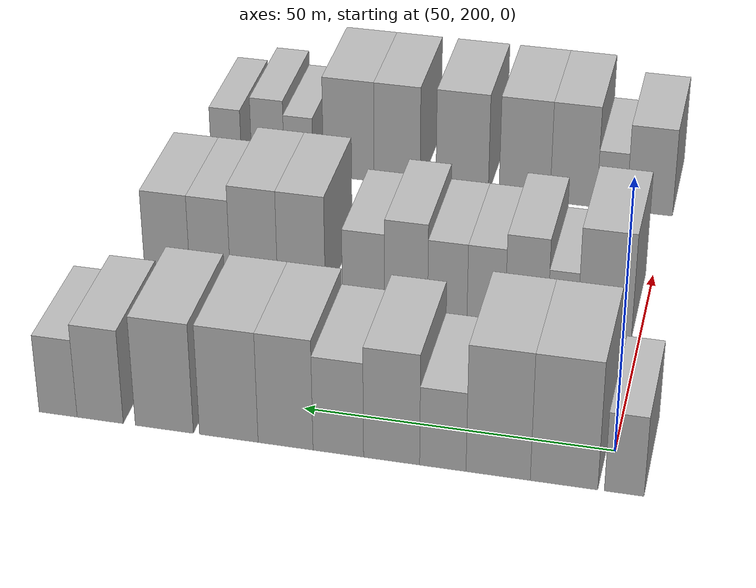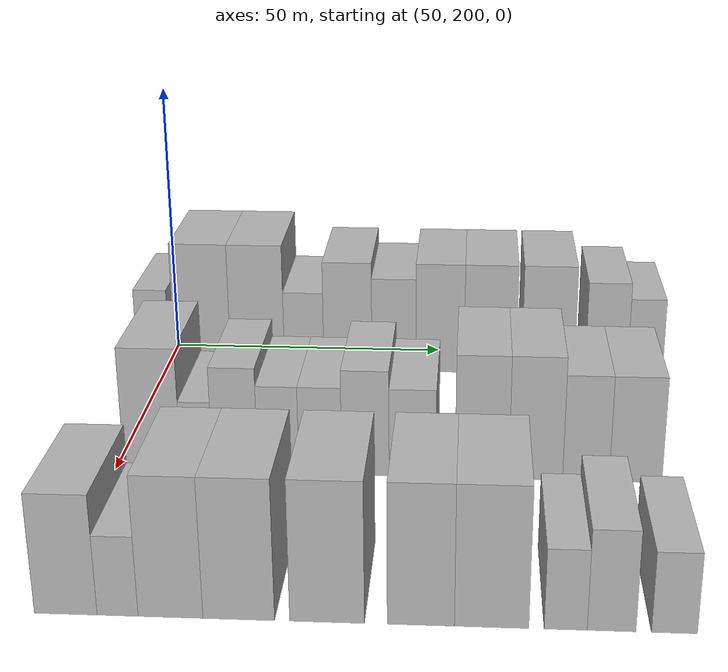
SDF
<sdf version="1.6">
 <world name="default">
  <model name="building_63">
   <static>1</static>
   <pose>50.0000 197.3361 0 0.000000 0.000000 0.000000</pose>
   <link name="link">
    <pose>0 0 7.50 0 0 0</pose>
    <collision name="collision"><geometry><box><size>20.0000 6.0712 15.0000</size></box></geometry></collision>
    <visual name="visual">
     <cast_shadows>0</cast_shadows>
     <geometry><box><size>20.0000 6.0712 15.0000</size></box></geometry>
     <material>
      <script>
       <uri>model://HANNAS_wall/materials/scripts</uri>
       <uri>model://HANNAS_wall/materials/textures</uri>
       <name>vrc/HANNAS_wall</name>
      </script>
     </material>
    </visual>
   </link>
  </model>
  <model name="building_64">
   <static>1</static>
   <pose>50.0000 206.5770 0 0.000000 0.000000 0.000000</pose>
   <link name="link">
    <pose>0 0 12.00 0 0 0</pose>
    <collision name="collision"><geometry><box><size>20.0000 10.4105 24.0000</size></box></geometry></collision>
    <visual name="visual">
     <cast_shadows>0</cast_shadows>
     <geometry><box><size>20.0000 10.4105 24.0000</size></box></geometry>
     <material>
      <script>
       <uri>model://HANNAS_wall/materials/scripts</uri>
       <uri>model://HANNAS_wall/materials/textures</uri>
       <name>vrc/HANNAS_wall</name>
      </script>
     </material>
    </visual>
   </link>
  </model>
  <model name="building_65">
   <static>1</static>
   <pose>50.0000 216.7912 0 0.000000 0.000000 0.000000</pose>
   <link name="link">
    <pose>0 0 12.00 0 0 0</pose>
    <collision name="collision"><geometry><box><size>20.0000 10.0179 24.0000</size></box></geometry></collision>
    <visual name="visual">
     <cast_shadows>0</cast_shadows>
     <geometry><box><size>20.0000 10.0179 24.0000</size></box></geometry>
     <material>
      <script>
       <uri>model://HANNAS_wall/materials/scripts</uri>
       <uri>model://HANNAS_wall/materials/textures</uri>
       <name>vrc/HANNAS_wall</name>
      </script>
     </material>
    </visual>
   </link>
  </model>
  <model name="building_66">
   <static>1</static>
   <pose>50.0000 225.4448 0 0.000000 0.000000 0.000000</pose>
   <link name="link">
    <pose>0 0 7.50 0 0 0</pose>
    <collision name="collision"><geometry><box><size>20.0000 7.2893 15.0000</size></box></geometry></collision>
    <visual name="visual">
     <cast_shadows>0</cast_shadows>
     <geometry><box><size>20.0000 7.2893 15.0000</size></box></geometry>
     <material>
      <script>
       <uri>model://HANNAS_wall/materials/scripts</uri>
       <uri>model://HANNAS_wall/materials/textures</uri>
       <name>vrc/HANNAS_wall</name>
      </script>
     </material>
    </visual>
   </link>
  </model>
  <model name="building_67">
   <static>1</static>
   <pose>50.0000 233.5340 0 0.000000 0.000000 0.000000</pose>
   <link name="link">
    <pose>0 0 10.50 0 0 0</pose>
    <collision name="collision"><geometry><box><size>20.0000 8.8891 21.0000</size></box></geometry></collision>
    <visual name="visual">
     <cast_shadows>0</cast_shadows>
     <geometry><box><size>20.0000 8.8891 21.0000</size></box></geometry>
     <material>
      <script>
       <uri>model://HANNAS_wall/materials/scripts</uri>
       <uri>model://HANNAS_wall/materials/textures</uri>
       <name>vrc/HANNAS_wall</name>
      </script>
     </material>
    </visual>
   </link>
  </model>
  <model name="building_68">
   <static>1</static>
   <pose>50.0000 242.0202 0 0.000000 0.000000 0.000000</pose>
   <link name="link">
    <pose>0 0 9.00 0 0 0</pose>
    <collision name="collision"><geometry><box><size>20.0000 8.0832 18.0000</size></box></geometry></collision>
    <visual name="visual">
     <cast_shadows>0</cast_shadows>
     <geometry><box><size>20.0000 8.0832 18.0000</size></box></geometry>
     <material>
      <script>
       <uri>model://HANNAS_wall/materials/scripts</uri>
       <uri>model://HANNAS_wall/materials/textures</uri>
       <name>vrc/HANNAS_wall</name>
      </script>
     </material>
    </visual>
   </link>
  </model>
  <model name="building_69">
   <static>1</static>
   <pose>50.0000 250.4958 0 0.000000 0.000000 0.000000</pose>
   <link name="link">
    <pose>0 0 10.50 0 0 0</pose>
    <collision name="collision"><geometry><box><size>20.0000 8.8679 21.0000</size></box></geometry></collision>
    <visual name="visual">
     <cast_shadows>0</cast_shadows>
     <geometry><box><size>20.0000 8.8679 21.0000</size></box></geometry>
     <material>
      <script>
       <uri>model://HANNAS_wall/materials/scripts</uri>
       <uri>model://HANNAS_wall/materials/textures</uri>
       <name>vrc/HANNAS_wall</name>
      </script>
     </material>
    </visual>
   </link>
  </model>
  <model name="building_70">
   <static>1</static>
   <pose>50.0000 259.7075 0 0.000000 0.000000 0.000000</pose>
   <link name="link">
    <pose>0 0 10.50 0 0 0</pose>
    <collision name="collision"><geometry><box><size>20.0000 9.5554 21.0000</size></box></geometry></collision>
    <visual name="visual">
     <cast_shadows>0</cast_shadows>
     <geometry><box><size>20.0000 9.5554 21.0000</size></box></geometry>
     <material>
      <script>
       <uri>model://HANNAS_wall/materials/scripts</uri>
       <uri>model://HANNAS_wall/materials/textures</uri>
       <name>vrc/HANNAS_wall</name>
      </script>
     </material>
    </visual>
   </link>
  </model>
  <model name="building_71">
   <static>1</static>
   <pose>50.0000 270.2743 0 0.000000 0.000000 0.000000</pose>
   <link name="link">
    <pose>0 0 10.50 0 0 0</pose>
    <collision name="collision"><geometry><box><size>20.0000 9.5782 21.0000</size></box></geometry></collision>
    <visual name="visual">
     <cast_shadows>0</cast_shadows>
     <geometry><box><size>20.0000 9.5782 21.0000</size></box></geometry>
     <material>
      <script>
       <uri>model://HANNAS_wall/materials/scripts</uri>
       <uri>model://HANNAS_wall/materials/textures</uri>
       <name>vrc/HANNAS_wall</name>
      </script>
     </material>
    </visual>
   </link>
  </model>
  <model name="building_72">
   <static>1</static>
   <pose>50.0000 280.9077 0 0.000000 0.000000 0.000000</pose>
   <link name="link">
    <pose>0 0 9.00 0 0 0</pose>
    <collision name="collision"><geometry><box><size>20.0000 7.6887 18.0000</size></box></geometry></collision>
    <visual name="visual">
     <cast_shadows>0</cast_shadows>
     <geometry><box><size>20.0000 7.6887 18.0000</size></box></geometry>
     <material>
      <script>
       <uri>model://HANNAS_wall/materials/scripts</uri>
       <uri>model://HANNAS_wall/materials/textures</uri>
       <name>vrc/HANNAS_wall</name>
      </script>
     </material>
    </visual>
   </link>
  </model>
  <model name="building_73">
   <static>1</static>
   <pose>50.0000 287.9304 0 0.000000 0.000000 0.000000</pose>
   <link name="link">
    <pose>0 0 7.50 0 0 0</pose>
    <collision name="collision"><geometry><box><size>20.0000 6.3568 15.0000</size></box></geometry></collision>
    <visual name="visual">
     <cast_shadows>0</cast_shadows>
     <geometry><box><size>20.0000 6.3568 15.0000</size></box></geometry>
     <material>
      <script>
       <uri>model://HANNAS_wall/materials/scripts</uri>
       <uri>model://HANNAS_wall/materials/textures</uri>
       <name>vrc/HANNAS_wall</name>
      </script>
     </material>
    </visual>
   </link>
  </model>
  <model name="building_151">
   <static>1</static>
   <pose>90.0000 205.9098 0 0.000000 0.000000 0.000000</pose>
   <link name="link">
    <pose>0 0 10.50 0 0 0</pose>
    <collision name="collision"><geometry><box><size>20.0000 9.1450 21.0000</size></box></geometry></collision>
    <visual name="visual">
     <cast_shadows>0</cast_shadows>
     <geometry><box><size>20.0000 9.1450 21.0000</size></box></geometry>
     <material>
      <script>
       <uri>model://HANNAS_wall/materials/scripts</uri>
       <uri>model://HANNAS_wall/materials/textures</uri>
       <name>vrc/HANNAS_wall</name>
      </script>
     </material>
    </visual>
   </link>
  </model>
  <model name="building_152">
   <static>1</static>
   <pose>90.0000 213.0103 0 0.000000 0.000000 0.000000</pose>
   <link name="link">
    <pose>0 0 6.00 0 0 0</pose>
    <collision name="collision"><geometry><box><size>20.0000 5.0562 12.0000</size></box></geometry></collision>
    <visual name="visual">
     <cast_shadows>0</cast_shadows>
     <geometry><box><size>20.0000 5.0562 12.0000</size></box></geometry>
     <material>
      <script>
       <uri>model://HANNAS_wall/materials/scripts</uri>
       <uri>model://HANNAS_wall/materials/textures</uri>
       <name>vrc/HANNAS_wall</name>
      </script>
     </material>
    </visual>
   </link>
  </model>
  <model name="building_153">
   <static>1</static>
   <pose>90.0000 219.1524 0 0.000000 0.000000 0.000000</pose>
   <link name="link">
    <pose>0 0 9.00 0 0 0</pose>
    <collision name="collision"><geometry><box><size>20.0000 7.2279 18.0000</size></box></geometry></collision>
    <visual name="visual">
     <cast_shadows>0</cast_shadows>
     <geometry><box><size>20.0000 7.2279 18.0000</size></box></geometry>
     <material>
      <script>
       <uri>model://HANNAS_wall/materials/scripts</uri>
       <uri>model://HANNAS_wall/materials/textures</uri>
       <name>vrc/HANNAS_wall</name>
      </script>
     </material>
    </visual>
   </link>
  </model>
  <model name="building_154">
   <static>1</static>
   <pose>90.0000 226.0284 0 0.000000 0.000000 0.000000</pose>
   <link name="link">
    <pose>0 0 7.50 0 0 0</pose>
    <collision name="collision"><geometry><box><size>20.0000 6.5243 15.0000</size></box></geometry></collision>
    <visual name="visual">
     <cast_shadows>0</cast_shadows>
     <geometry><box><size>20.0000 6.5243 15.0000</size></box></geometry>
     <material>
      <script>
       <uri>model://HANNAS_wall/materials/scripts</uri>
       <uri>model://HANNAS_wall/materials/textures</uri>
       <name>vrc/HANNAS_wall</name>
      </script>
     </material>
    </visual>
   </link>
  </model>
  <model name="building_155">
   <static>1</static>
   <pose>90.0000 232.6891 0 0.000000 0.000000 0.000000</pose>
   <link name="link">
    <pose>0 0 7.50 0 0 0</pose>
    <collision name="collision"><geometry><box><size>20.0000 6.7970 15.0000</size></box></geometry></collision>
    <visual name="visual">
     <cast_shadows>0</cast_shadows>
     <geometry><box><size>20.0000 6.7970 15.0000</size></box></geometry>
     <material>
      <script>
       <uri>model://HANNAS_wall/materials/scripts</uri>
       <uri>model://HANNAS_wall/materials/textures</uri>
       <name>vrc/HANNAS_wall</name>
      </script>
     </material>
    </visual>
   </link>
  </model>
  <model name="building_156">
   <static>1</static>
   <pose>90.0000 239.8294 0 0.000000 0.000000 0.000000</pose>
   <link name="link">
    <pose>0 0 9.00 0 0 0</pose>
    <collision name="collision"><geometry><box><size>20.0000 7.4837 18.0000</size></box></geometry></collision>
    <visual name="visual">
     <cast_shadows>0</cast_shadows>
     <geometry><box><size>20.0000 7.4837 18.0000</size></box></geometry>
     <material>
      <script>
       <uri>model://HANNAS_wall/materials/scripts</uri>
       <uri>model://HANNAS_wall/materials/textures</uri>
       <name>vrc/HANNAS_wall</name>
      </script>
     </material>
    </visual>
   </link>
  </model>
  <model name="building_157">
   <static>1</static>
   <pose>90.0000 247.2647 0 0.000000 0.000000 0.000000</pose>
   <link name="link">
    <pose>0 0 7.50 0 0 0</pose>
    <collision name="collision"><geometry><box><size>20.0000 7.3870 15.0000</size></box></geometry></collision>
    <visual name="visual">
     <cast_shadows>0</cast_shadows>
     <geometry><box><size>20.0000 7.3870 15.0000</size></box></geometry>
     <material>
      <script>
       <uri>model://HANNAS_wall/materials/scripts</uri>
       <uri>model://HANNAS_wall/materials/textures</uri>
       <name>vrc/HANNAS_wall</name>
      </script>
     </material>
    </visual>
   </link>
  </model>
  <model name="building_158">
   <static>1</static>
   <pose>90.0000 258.1683 0 0.000000 0.000000 0.000000</pose>
   <link name="link">
    <pose>0 0 10.50 0 0 0</pose>
    <collision name="collision"><geometry><box><size>20.0000 8.4202 21.0000</size></box></geometry></collision>
    <visual name="visual">
     <cast_shadows>0</cast_shadows>
     <geometry><box><size>20.0000 8.4202 21.0000</size></box></geometry>
     <material>
      <script>
       <uri>model://HANNAS_wall/materials/scripts</uri>
       <uri>model://HANNAS_wall/materials/textures</uri>
       <name>vrc/HANNAS_wall</name>
      </script>
     </material>
    </visual>
   </link>
  </model>
  <model name="building_159">
   <static>1</static>
   <pose>90.0000 266.5887 0 0.000000 0.000000 0.000000</pose>
   <link name="link">
    <pose>0 0 10.50 0 0 0</pose>
    <collision name="collision"><geometry><box><size>20.0000 8.4207 21.0000</size></box></geometry></collision>
    <visual name="visual">
     <cast_shadows>0</cast_shadows>
     <geometry><box><size>20.0000 8.4207 21.0000</size></box></geometry>
     <material>
      <script>
       <uri>model://HANNAS_wall/materials/scripts</uri>
       <uri>model://HANNAS_wall/materials/textures</uri>
       <name>vrc/HANNAS_wall</name>
      </script>
     </material>
    </visual>
   </link>
  </model>
  <model name="building_160">
   <static>1</static>
   <pose>90.0000 274.4345 0 0.000000 0.000000 0.000000</pose>
   <link name="link">
    <pose>0 0 9.00 0 0 0</pose>
    <collision name="collision"><geometry><box><size>20.0000 7.2709 18.0000</size></box></geometry></collision>
    <visual name="visual">
     <cast_shadows>0</cast_shadows>
     <geometry><box><size>20.0000 7.2709 18.0000</size></box></geometry>
     <material>
      <script>
       <uri>model://HANNAS_wall/materials/scripts</uri>
       <uri>model://HANNAS_wall/materials/textures</uri>
       <name>vrc/HANNAS_wall</name>
      </script>
     </material>
    </visual>
   </link>
  </model>
  <model name="building_161">
   <static>1</static>
   <pose>90.0000 282.1580 0 0.000000 0.000000 0.000000</pose>
   <link name="link">
    <pose>0 0 9.00 0 0 0</pose>
    <collision name="collision"><geometry><box><size>20.0000 8.1762 18.0000</size></box></geometry></collision>
    <visual name="visual">
     <cast_shadows>0</cast_shadows>
     <geometry><box><size>20.0000 8.1762 18.0000</size></box></geometry>
     <material>
      <script>
       <uri>model://HANNAS_wall/materials/scripts</uri>
       <uri>model://HANNAS_wall/materials/textures</uri>
       <name>vrc/HANNAS_wall</name>
      </script>
     </material>
    </visual>
   </link>
  </model>
  <model name="building_238">
   <static>1</static>
   <pose>130.0000 203.0936 0 0.000000 0.000000 0.000000</pose>
   <link name="link">
    <pose>0 0 9.00 0 0 0</pose>
    <collision name="collision"><geometry><box><size>20.0000 8.4165 18.0000</size></box></geometry></collision>
    <visual name="visual">
     <cast_shadows>0</cast_shadows>
     <geometry><box><size>20.0000 8.4165 18.0000</size></box></geometry>
     <material>
      <script>
       <uri>model://HANNAS_wall/materials/scripts</uri>
       <uri>model://HANNAS_wall/materials/textures</uri>
       <name>vrc/HANNAS_wall</name>
      </script>
     </material>
    </visual>
   </link>
  </model>
  <model name="building_239">
   <static>1</static>
   <pose>130.0000 210.0374 0 0.000000 0.000000 0.000000</pose>
   <link name="link">
    <pose>0 0 6.00 0 0 0</pose>
    <collision name="collision"><geometry><box><size>20.0000 5.4712 12.0000</size></box></geometry></collision>
    <visual name="visual">
     <cast_shadows>0</cast_shadows>
     <geometry><box><size>20.0000 5.4712 12.0000</size></box></geometry>
     <material>
      <script>
       <uri>model://HANNAS_wall/materials/scripts</uri>
       <uri>model://HANNAS_wall/materials/textures</uri>
       <name>vrc/HANNAS_wall</name>
      </script>
     </material>
    </visual>
   </link>
  </model>
  <model name="building_240">
   <static>1</static>
   <pose>130.0000 217.0909 0 0.000000 0.000000 0.000000</pose>
   <link name="link">
    <pose>0 0 10.50 0 0 0</pose>
    <collision name="collision"><geometry><box><size>20.0000 8.6358 21.0000</size></box></geometry></collision>
    <visual name="visual">
     <cast_shadows>0</cast_shadows>
     <geometry><box><size>20.0000 8.6358 21.0000</size></box></geometry>
     <material>
      <script>
       <uri>model://HANNAS_wall/materials/scripts</uri>
       <uri>model://HANNAS_wall/materials/textures</uri>
       <name>vrc/HANNAS_wall</name>
      </script>
     </material>
    </visual>
   </link>
  </model>
  <model name="building_241">
   <static>1</static>
   <pose>130.0000 226.1619 0 0.000000 0.000000 0.000000</pose>
   <link name="link">
    <pose>0 0 10.50 0 0 0</pose>
    <collision name="collision"><geometry><box><size>20.0000 9.5062 21.0000</size></box></geometry></collision>
    <visual name="visual">
     <cast_shadows>0</cast_shadows>
     <geometry><box><size>20.0000 9.5062 21.0000</size></box></geometry>
     <material>
      <script>
       <uri>model://HANNAS_wall/materials/scripts</uri>
       <uri>model://HANNAS_wall/materials/textures</uri>
       <name>vrc/HANNAS_wall</name>
      </script>
     </material>
    </visual>
   </link>
  </model>
  <model name="building_242">
   <static>1</static>
   <pose>130.0000 237.8422 0 0.000000 0.000000 0.000000</pose>
   <link name="link">
    <pose>0 0 10.50 0 0 0</pose>
    <collision name="collision"><geometry><box><size>20.0000 9.8543 21.0000</size></box></geometry></collision>
    <visual name="visual">
     <cast_shadows>0</cast_shadows>
     <geometry><box><size>20.0000 9.8543 21.0000</size></box></geometry>
     <material>
      <script>
       <uri>model://HANNAS_wall/materials/scripts</uri>
       <uri>model://HANNAS_wall/materials/textures</uri>
       <name>vrc/HANNAS_wall</name>
      </script>
     </material>
    </visual>
   </link>
  </model>
  <model name="building_243">
   <static>1</static>
   <pose>130.0000 250.1531 0 0.000000 0.000000 0.000000</pose>
   <link name="link">
    <pose>0 0 10.50 0 0 0</pose>
    <collision name="collision"><geometry><box><size>20.0000 8.7676 21.0000</size></box></geometry></collision>
    <visual name="visual">
     <cast_shadows>0</cast_shadows>
     <geometry><box><size>20.0000 8.7676 21.0000</size></box></geometry>
     <material>
      <script>
       <uri>model://HANNAS_wall/materials/scripts</uri>
       <uri>model://HANNAS_wall/materials/textures</uri>
       <name>vrc/HANNAS_wall</name>
      </script>
     </material>
    </visual>
   </link>
  </model>
  <model name="building_244">
   <static>1</static>
   <pose>130.0000 259.3817 0 0.000000 0.000000 0.000000</pose>
   <link name="link">
    <pose>0 0 10.50 0 0 0</pose>
    <collision name="collision"><geometry><box><size>20.0000 9.6894 21.0000</size></box></geometry></collision>
    <visual name="visual">
     <cast_shadows>0</cast_shadows>
     <geometry><box><size>20.0000 9.6894 21.0000</size></box></geometry>
     <material>
      <script>
       <uri>model://HANNAS_wall/materials/scripts</uri>
       <uri>model://HANNAS_wall/materials/textures</uri>
       <name>vrc/HANNAS_wall</name>
      </script>
     </material>
    </visual>
   </link>
  </model>
  <model name="building_245">
   <static>1</static>
   <pose>130.0000 269.0132 0 0.000000 0.000000 0.000000</pose>
   <link name="link">
    <pose>0 0 6.00 0 0 0</pose>
    <collision name="collision"><geometry><box><size>20.0000 5.5736 12.0000</size></box></geometry></collision>
    <visual name="visual">
     <cast_shadows>0</cast_shadows>
     <geometry><box><size>20.0000 5.5736 12.0000</size></box></geometry>
     <material>
      <script>
       <uri>model://HANNAS_wall/materials/scripts</uri>
       <uri>model://HANNAS_wall/materials/textures</uri>
       <name>vrc/HANNAS_wall</name>
      </script>
     </material>
    </visual>
   </link>
  </model>
  <model name="building_246">
   <static>1</static>
   <pose>130.0000 274.9493 0 0.000000 0.000000 0.000000</pose>
   <link name="link">
    <pose>0 0 7.50 0 0 0</pose>
    <collision name="collision"><geometry><box><size>20.0000 6.2987 15.0000</size></box></geometry></collision>
    <visual name="visual">
     <cast_shadows>0</cast_shadows>
     <geometry><box><size>20.0000 6.2987 15.0000</size></box></geometry>
     <material>
      <script>
       <uri>model://HANNAS_wall/materials/scripts</uri>
       <uri>model://HANNAS_wall/materials/textures</uri>
       <name>vrc/HANNAS_wall</name>
      </script>
     </material>
    </visual>
   </link>
  </model>
  <model name="building_247">
   <static>1</static>
   <pose>130.0000 283.0550 0 0.000000 0.000000 0.000000</pose>
   <link name="link">
    <pose>0 0 6.00 0 0 0</pose>
    <collision name="collision"><geometry><box><size>20.0000 5.9126 12.0000</size></box></geometry></collision>
    <visual name="visual">
     <cast_shadows>0</cast_shadows>
     <geometry><box><size>20.0000 5.9126 12.0000</size></box></geometry>
     <material>
      <script>
       <uri>model://HANNAS_wall/materials/scripts</uri>
       <uri>model://HANNAS_wall/materials/textures</uri>
       <name>vrc/HANNAS_wall</name>
      </script>
     </material>
    </visual>
   </link>
  </model>
 </world>
</sdf>
